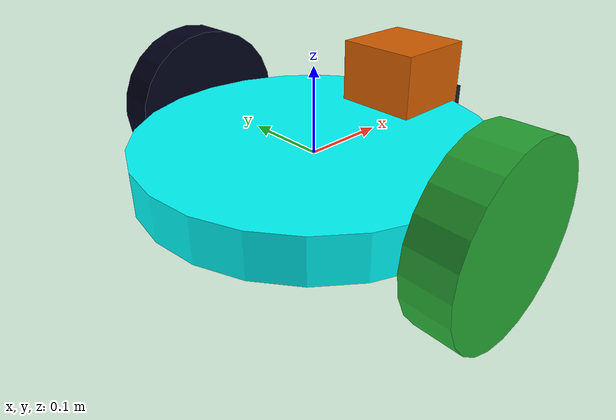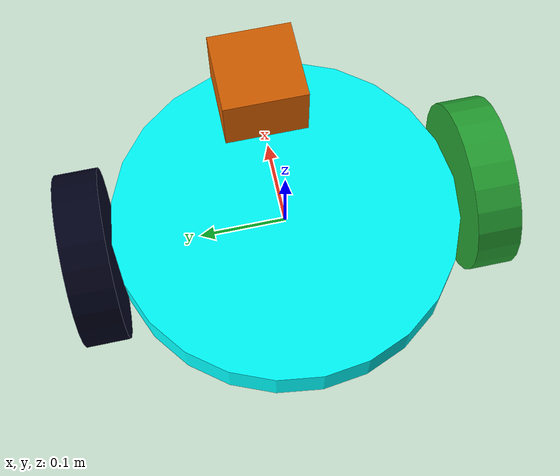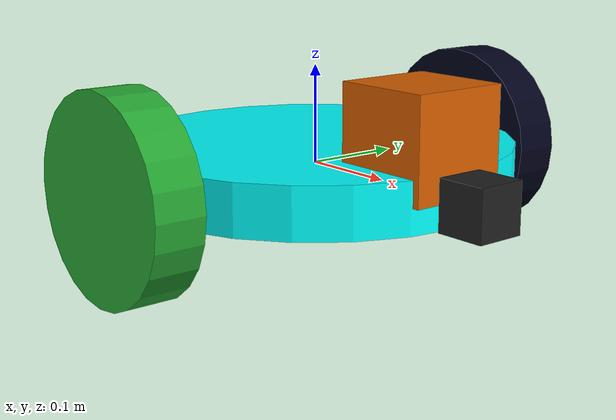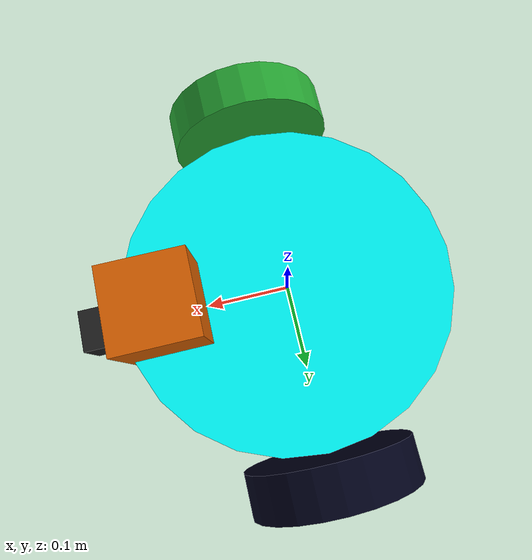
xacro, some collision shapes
<?xml version='1.0'?>

<robot name="my_robot" xmlns:xacro="http://www.ros.org/wiki/xacro">
  <xacro:include filename="$(find my_robot)/urdf/my_robot.gazebo" />

  <link name="robot_footprint"></link>

  <joint name="robot_footprint_joint" type="fixed">
      <origin xyz="0 0 0" rpy="0 0 0" />
      <parent link="robot_footprint"/>
      <child link="chassis" />
  </joint>

  <link name='chassis'>
      <pose>0 0 0.1 0 0 0</pose>

      <inertial>
        <mass value="10.0"/>
        <origin xyz="0.0 0 0" rpy=" 0 0 0"/>
        <inertia
            ixx="0.1" ixy="0" ixz="0"
            iyy="0.1" iyz="0"
            izz="0.1"
        />
      </inertial>

      <collision name='collision'>
        <origin xyz="0 0 0" rpy=" 0 0 0"/>
        <geometry>
          <cylinder radius="0.2" length="0.05"/>
        </geometry>
      </collision>

      <visual name='chassis_visual'>
        <origin xyz="0 0 0" rpy=" 0 0 0"/>
        <geometry>
          <cylinder radius="0.2" length="0.05"/>
        </geometry>
        <material name="Cyan">
          <color rgba="0 1.0 1.0 1.0"/>
        </material>
      </visual>

  <link name='back_caster_collision'>
    <inertial>
       <mass value="100.0"/>
       <inertia ixx="0.1" ixy="0" ixz="0" iyy="0.1" iyz="0" izz="0.1"/>
    </inertial>

      <collision>
        <origin xyz="-0.15 0 -0.05" rpy=" 0 0 0"/>
        <geometry>
          <sphere radius="0.0499"/>
        </geometry>
      </collision>

      <visual>
        <origin xyz="-0.15 0 -0.05" rpy=" 0 0 0"/>
        <geometry>
          <sphere radius="0.05"/>
        </geometry>
        <material name="Cyan">
          <color rgba="0 1.0 1.0 1.0"/>
        </material>
      </visual>
    </link>

 <link name='front_caster_collision'>
    <inertial>
       <mass value="100.0"/>
       <inertia ixx="0.1" ixy="0" ixz="0" iyy="0.1" iyz="0" izz="0.1"/>
    </inertial>

      <collision>
        <origin xyz="0.15 0 -0.05" rpy=" 0 0 0"/>
        <geometry>
          <sphere radius="0.0499"/>
        </geometry>
      </collision>

      <visual>
        <origin xyz="0.15 0 -0.05" rpy=" 0 0 0"/>
        <geometry>
          <sphere radius="0.05"/>
        </geometry>
        <material name="Cyan">
          <color rgba="0 1.0 1.0 0.50"/>
        </material>
      </visual>
  </link>

  <gazebo reference="chassis">
      <material>Gazebo/Blue</material>
  </gazebo>
</link>

  <link name="left_wheel">
    <inertial>
       <mass value="100.0"/>
       <origin xyz="0 0 0" rpy=" 0 1.5707 1.5707"/>
       <inertia ixx="0.1" ixy="0" ixz="0" iyy="0.1" iyz="0" izz="0.1"/>
    </inertial>

    <visual name='left_wheel_visual'>
       <origin xyz="0 0.225 0" rpy="0 1.5707 1.5707"/>
       <geometry>
         <cylinder radius="0.1" length="0.05"/>
       </geometry>
       <material name="Cyan">
          <color rgba="0 1.0 25 50"/>
       </material>
    </visual>

    <collision name='left_wheel_collision'>
       <origin xyz="0 0.225 0" rpy=" 0 1.5707 1.5707"/>
       <geometry>
         <cylinder radius="0.1" length="0.05"/>
       </geometry>
    </collision>
  </link>

  <joint type="continuous" name="left_wheel_hinge">
      <origin xyz="0 0 0" rpy="0 0 0"/>
      <child link="left_wheel"/>
      <parent link="chassis"/>
      <axis xyz="0 1 0" rpy="0 0 0"/>
      <limit effort="10000" velocity="1000"/>
      <dynamics damping="1.0" friction="1.0"/>
  </joint>
  <gazebo reference="left_wheel">
      <material>Gazebo/Green</material>
  </gazebo>

  <link name="right_wheel">
    <inertial>
       <mass value="100.0"/>
       <origin xyz="0 0 0" rpy=" 0 1.5707 1.5707"/>
       <inertia ixx="0.1" ixy="0" ixz="0" iyy="0.1" iyz="0" izz="0.1"/>
    </inertial>

    <visual name='right_wheel_visual'>
       <origin xyz="0 -0.225 0" rpy="0 1.5707 1.5707"/>
       <geometry>
         <cylinder radius="0.1" length="0.05"/>
       </geometry>
    </visual>

    <collision name='right_wheel_collision'>
       <origin xyz="0 -0.225 0" rpy=" 0 1.5707 1.5707"/>
       <geometry>
         <cylinder radius="0.1" length="0.05"/>
       </geometry>
    </collision>
  </link>

  <joint type="continuous" name="right_wheel_hinge">
      <origin xyz="0 0 0" rpy="0 0 0"/>
      <child link="right_wheel"/>
      <parent link="chassis"/>
      <axis xyz="0 1 0" rpy="0 0 0"/>
      <limit effort="10000" velocity="1000"/>
      <dynamics damping="1.0" friction="1.0"/>
  </joint>
  <gazebo reference="right_wheel">
      <material>Gazebo/Green</material>
  </gazebo>

  <link name="camera">
    <inertial>
       <mass value="0.1"/>
       <origin xyz="0 0 0" rpy=" 0 0 0"/>
       <inertia ixx="1e-6" ixy="0" ixz="0" iyy="1e-6" iyz="0" izz="1e-6"/>
    </inertial>

    <visual name='camera_visual'>
       <origin xyz="0 0 0" rpy="0 0 0"/>
       <geometry>
         <box size="0.05 0.05 0.05"/>
       </geometry>
    </visual>

    <collision name='camera_collision'>
       <origin xyz="0 0 0" rpy=" 0 0 0"/>
       <geometry>
         <box size="0.05 0.05 0.05"/>
       </geometry>
    </collision>
  </link>

  <joint type="fixed" name="camera_joint">
      <origin xyz="0.225 0 0" rpy="0 0 0"/>
      <child link="camera"/>
      <parent link="chassis"/>
      <axis xyz="0 1 0" rpy="0 0 0"/>
      <limit effort="10000" velocity="1000"/>
      <dynamics damping="1.0" friction="1.0"/>
  </joint>
  <gazebo reference="camera">
      <material>Gazebo/Black</material>
  </gazebo>

  <link name="hokuyo">
    <inertial>
       <mass value="1e-5"/>
       <origin xyz="0 0 0" rpy=" 0 0 0"/>
       <inertia ixx="1e-6" ixy="0" ixz="0" iyy="1e-6" iyz="0" izz="1e-6"/>
    </inertial>

    <visual name='hokuyo_visual'>
       <origin xyz="0 0 0" rpy="0 0 0"/>
       <geometry>
        <mesh filename="package://my_robot/meshes/hokuyo.dae"/>
       </geometry>
    </visual>

    <collision name='hokuyo_collision'>
       <origin xyz="0 0 0" rpy=" 0 0 0"/>
       <geometry>
         <box size="0.1 0.1 0.1"/>
       </geometry>
    </collision>
  </link>

  <joint type="fixed" name="hokuyo_joint">
      <origin xyz="0.15 0 0.05" rpy="0 0 0"/>
      <child link="hokuyo"/>
      <parent link="chassis"/>
      <axis xyz="0 1 0" rpy="0 0 0"/>
      <limit effort="10000" velocity="1000"/>
      <dynamics damping="1.0" friction="1.0"/>
  </joint>
</robot>
